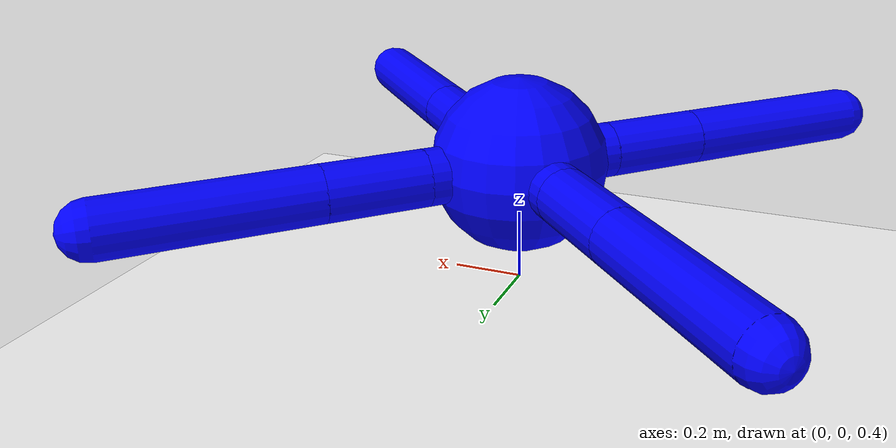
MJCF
<mujoco model="ant">
  <include file="common/materials.xml"/>

  <compiler angle="degree" inertiafromgeom="true"/>
  <option integrator="Euler" timestep="0.001" iterations="50" ls_iterations="50">
    <flag eulerdamp="disable"/>
  </option>
  <default>
    <joint armature="0.5" damping="0.1" limited="true"/>
    <geom conaffinity="0" condim="3" density="5.0" friction="1 0.5 0.5" margin="0.01" material="self"/>
  </default>
  <asset>
    <texture type="skybox" builtin="gradient" rgb1="1 1 1" rgb2="1 1 1" width="800" height="800"/>
    <texture type="2d" name="groundplane" builtin="checker" mark="edge" rgb1="1 1 1" rgb2="1 1 1"
      markrgb="0 0 0" width="300" height="300"/>
    <material name="groundplane" texture="groundplane" texuniform="true" texrepeat="5 5" reflectance="0"/>
  </asset>

  <visual>
    <headlight diffuse=".8 .8 .8" ambient=".2 .2 .2" specular="1 1 1"/>
    <rgba force="1 0 0 1" fog="1 1 1 1"/>
    <global azimuth="140" elevation="-20" offwidth="2560" offheight="2560"/>
    <map fogstart="3" fogend="5" force="0.1" znear="0.1"/>
    <scale forcewidth="0.3" contactwidth="0.5" contactheight="0.2"/>
    <quality shadowsize="8192"/>
  </visual>

  <worldbody>
    <light name="light" pos="0 0 30" dir="0 0 -1" specular="0.1 0.1 0.1" diffuse=".2 .2 .2" exponent="0.5" ambient="0.2 0.2 0.2" mode="trackcom"/>

    <geom name="ground" type="plane" conaffinity="1" pos="0 0 0" size="100 100 .5" material="groundplane"/>
    <body name="torso" pos="0 0 0.75">
      <camera name="track" mode="trackcom" pos="0 -5 3" xyaxes="1 0 0 0 0.6 1"/>
      <geom conaffinity="0" contype="0" name="torso_geom" pos="0 0 0" size="0.25" type="sphere"/>
      <joint armature="0" damping="0" limited="false" margin="0.01" name="root" pos="0 0 0" type="free"/>
      <body name="front_left_leg" pos="0 0 0">
        <geom conaffinity="0" contype="0" fromto="0.0 0.0 0.0 0.2 0.2 0.0" name="aux_1_geom" size="0.08" type="capsule"/>
        <body name="aux_1" pos="0.2 0.2 0">
          <joint axis="0 0 1" name="hip_1" pos="0.0 0.0 0.0" range="-30 30" type="hinge"/>
          <geom conaffinity="0" contype="0" fromto="0.0 0.0 0.0 0.2 0.2 0.0" name="left_leg_geom" size="0.08" type="capsule"/>
          <body pos="0.2 0.2 0">
            <joint axis="-1 1 0" name="ankle_1" pos="0.0 0.0 0.0" range="30 70" type="hinge"/>
            <geom fromto="0.0 0.0 0.0 0.4 0.4 0.0" name="left_ankle_geom" size="0.08" type="capsule"/>
          </body>
        </body>
      </body>
      <body name="front_right_leg" pos="0 0 0">
        <geom conaffinity="0" contype="0" fromto="0.0 0.0 0.0 -0.2 0.2 0.0" name="aux_2_geom" size="0.08" type="capsule"/>
        <body name="aux_2" pos="-0.2 0.2 0">
          <joint axis="0 0 1" name="hip_2" pos="0.0 0.0 0.0" range="-30 30" type="hinge"/>
          <geom conaffinity="0" contype="0" fromto="0.0 0.0 0.0 -0.2 0.2 0.0" name="right_leg_geom" size="0.08" type="capsule"/>
          <body pos="-0.2 0.2 0">
            <joint axis="1 1 0" name="ankle_2" pos="0.0 0.0 0.0" range="-70 -30" type="hinge"/>
            <geom fromto="0.0 0.0 0.0 -0.4 0.4 0.0" name="right_ankle_geom" size="0.08" type="capsule"/>
          </body>
        </body>
      </body>
      <body name="back_leg" pos="0 0 0">
        <geom conaffinity="0" contype="0" fromto="0.0 0.0 0.0 -0.2 -0.2 0.0" name="aux_3_geom" size="0.08" type="capsule"/>
        <body name="aux_3" pos="-0.2 -0.2 0">
          <joint axis="0 0 1" name="hip_3" pos="0.0 0.0 0.0" range="-30 30" type="hinge"/>
          <geom conaffinity="0" contype="0" fromto="0.0 0.0 0.0 -0.2 -0.2 0.0" name="back_leg_geom" size="0.08" type="capsule"/>
          <body pos="-0.2 -0.2 0">
            <joint axis="-1 1 0" name="ankle_3" pos="0.0 0.0 0.0" range="-70 -30" type="hinge"/>
            <geom fromto="0.0 0.0 0.0 -0.4 -0.4 0.0" name="third_ankle_geom" size="0.08" type="capsule"/>
          </body>
        </body>
      </body>
      <body name="right_back_leg" pos="0 0 0">
        <geom conaffinity="0" contype="0" fromto="0.0 0.0 0.0 0.2 -0.2 0.0" name="aux_4_geom" size="0.08" type="capsule"/>
        <body name="aux_4" pos="0.2 -0.2 0">
          <joint axis="0 0 1" name="hip_4" pos="0.0 0.0 0.0" range="-30 30" type="hinge"/>
          <geom conaffinity="0" contype="0" fromto="0.0 0.0 0.0 0.2 -0.2 0.0" name="rightback_leg_geom" size="0.08" type="capsule"/>
          <body pos="0.2 -0.2 0">
            <joint axis="1 1 0" name="ankle_4" pos="0.0 0.0 0.0" range="30 70" type="hinge"/>
            <geom fromto="0.0 0.0 0.0 0.4 -0.4 0.0" name="fourth_ankle_geom" size="0.08" type="capsule"/>
          </body>
        </body>
      </body>
    </body>
  </worldbody>
  <actuator>
    <motor ctrllimited="true" ctrlrange="-1.0 1.0" joint="hip_4"   gear="100"/>
    <motor ctrllimited="true" ctrlrange="-1.0 1.0" joint="ankle_4" gear="100"/>
    <motor ctrllimited="true" ctrlrange="-1.0 1.0" joint="hip_1"   gear="100"/>
    <motor ctrllimited="true" ctrlrange="-1.0 1.0" joint="ankle_1" gear="100"/>
    <motor ctrllimited="true" ctrlrange="-1.0 1.0" joint="hip_2"   gear="100"/>
    <motor ctrllimited="true" ctrlrange="-1.0 1.0" joint="ankle_2" gear="100"/>
    <motor ctrllimited="true" ctrlrange="-1.0 1.0" joint="hip_3"   gear="100"/>
    <motor ctrllimited="true" ctrlrange="-1.0 1.0" joint="ankle_3" gear="100"/>
  </actuator>
  <sensor>
    <framezaxis name="torso_z" objtype="body" objname="torso"/>
  </sensor>
</mujoco>

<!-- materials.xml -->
<!--
Common textures, colors and materials to be used throughout this suite. Some
materials such as xxx_highlight are activated on occurence of certain events,
for example receiving a positive reward.
-->
<mujoco>
  <asset>
    <texture name="grid" type="2d" builtin="checker" rgb1=".1 .2 .3" rgb2=".2 .3 .4" width="300" height="300" mark="edge" markrgb=".2 .3 .4"/>
    <material name="grid" texture="grid" texrepeat="1 1" texuniform="true" reflectance=".2"/>
    <material name="self" rgba="0 0 1 1"/>
    <material name="self_default" rgba=".7 .5 .3 1"/>
    <material name="self_highlight" rgba="0 .5 .3 1"/>
    <material name="effector" rgba=".7 .4 .2 1"/>
    <material name="effector_default" rgba=".7 .4 .2 1"/>
    <material name="effector_highlight" rgba="0 .5 .3 1"/>
    <material name="decoration" rgba=".3 .5 .7 1"/>
    <material name="eye" rgba="0 .2 1 1"/>
    <material name="target" rgba=".6 .3 .3 1"/>
    <material name="target_default" rgba=".6 .3 .3 1"/>
    <material name="target_highlight" rgba=".6 .3 .3 .4"/>
    <material name="site" rgba=".5 .5 .5 .3"/>
  </asset>
</mujoco>
